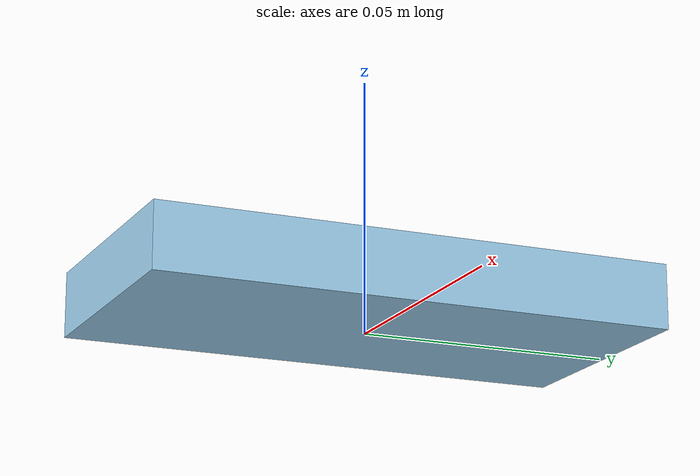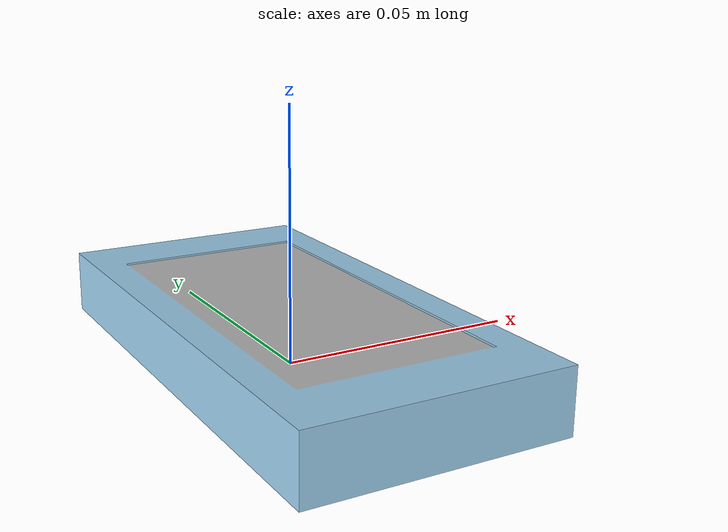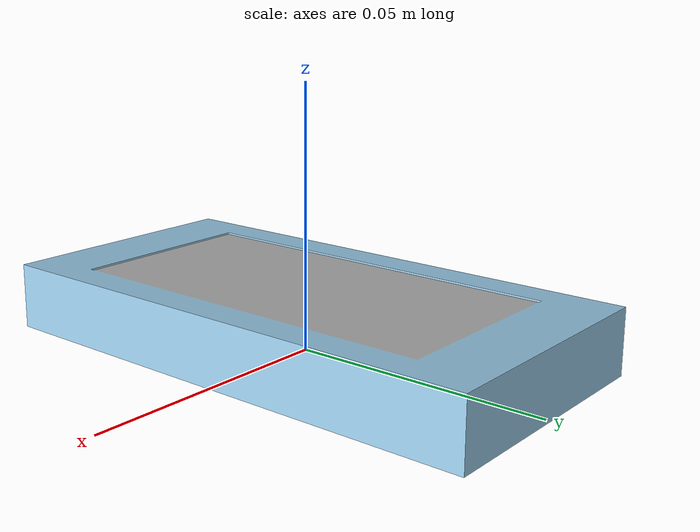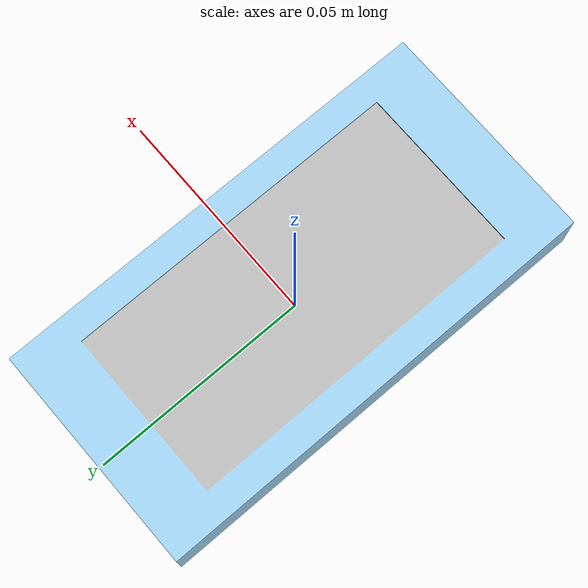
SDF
<?xml version="1.0" ?>
<sdf version="1.6">
  <model name="product_box">
    <static>false</static>

    <!-- Main product link -->
    <link name="box">
      <pose>0 0 0 0 0 0</pose>

      <!-- Visual -->
      <visual name="box_visual">
        <geometry>
          <mesh>
            <uri>model://product/meshes/product1.dae</uri>
            <scale>1.0 2.0 0.5</scale>

          </mesh>
        </geometry>

      </visual>

      <!-- Collision -->
      <collision name="box_collision">
        <geometry>
          <mesh>
            <uri>model://product/meshes/product1.dae</uri>
            <scale>1.0 3.0 0.5</scale>
          </mesh>
        </geometry>
      </collision>

      <!-- Inertia -->
      <inertial>
        <mass>0.5</mass>
        <inertia>
          <ixx>0.008333</ixx>
          <ixy>0.0</ixy>
          <ixz>0.0</ixz>
          <iyy>0.008333</iyy>
          <iyz>0.0</iyz>
          <izz>0.008333</izz>
        </inertia>
      </inertial>
    </link>

  </model>
</sdf>
